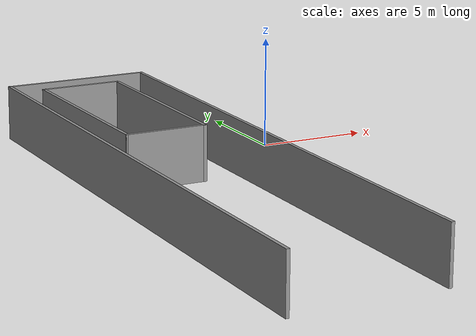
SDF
<?xml version='1.0'?>
<sdf version='1.7'>
  <model name='inaut_test'>
    <pose>-5.0375 -6.764 0 0 -0 0</pose>
    <link name='Wall_17'>
      <collision name='Wall_17_Collision'>
        <geometry>
          <box>
            <size>6.8 0.15 2.5</size>
          </box>
        </geometry>
        <pose>0 0 1.25 0 -0 0</pose>
      </collision>
      <visual name='Wall_17_Visual'>
        <pose>0 0 1.25 0 -0 0</pose>
        <geometry>
          <box>
            <size>6.8 0.15 2.5</size>
          </box>
        </geometry>
        <material>
          <script>
            <uri>file://media/materials/scripts/gazebo.material</uri>
            <name>Gazebo/Grey</name>
          </script>
          <ambient>1 1 1 1</ambient>
        </material>
        <meta>
          <layer>0</layer>
        </meta>
      </visual>
      <pose>-1.6375 13.064 0 0 -0 0</pose>
    </link>
    <link name='Wall_21'>
      <collision name='Wall_21_Collision'>
        <geometry>
          <box>
            <size>26.278 0.15 2.5</size>
          </box>
        </geometry>
        <pose>0 0 1.25 0 -0 0</pose>
      </collision>
      <visual name='Wall_21_Visual'>
        <pose>0 0 1.25 0 -0 0</pose>
        <geometry>
          <box>
            <size>26.278 0.15 2.5</size>
          </box>
        </geometry>
        <material>
          <script>
            <uri>file://media/materials/scripts/gazebo.material</uri>
            <name>Gazebo/Grey</name>
          </script>
          <ambient>1 1 1 1</ambient>
        </material>
        <meta>
          <layer>0</layer>
        </meta>
      </visual>
      <pose>-4.9625 0 0 0 -0 1.5708</pose>
    </link>
    <link name='Wall_23'>
      <collision name='Wall_23_Collision'>
        <geometry>
          <box>
            <size>26.27 0.15 2.5</size>
          </box>
        </geometry>
        <pose>0 0 1.25 0 -0 0</pose>
      </collision>
      <visual name='Wall_23_Visual'>
        <pose>0 0 1.25 0 -0 0</pose>
        <geometry>
          <box>
            <size>26.27 0.15 2.5</size>
          </box>
        </geometry>
        <material>
          <script>
            <uri>file://media/materials/scripts/gazebo.material</uri>
            <name>Gazebo/Grey</name>
          </script>
          <ambient>1 1 1 1</ambient>
        </material>
        <meta>
          <layer>0</layer>
        </meta>
      </visual>
      <pose>1.6875 0.004 0 0 -0 -1.5708</pose>
    </link>
    <link name='Wall_40'>
      <collision name='Wall_40_Collision'>
        <geometry>
          <box>
            <size>3.75 0.15 2.5</size>
          </box>
        </geometry>
        <pose>0 0 1.25 0 -0 0</pose>
      </collision>
      <visual name='Wall_40_Visual'>
        <pose>0 0 1.25 0 -0 0</pose>
        <geometry>
          <box>
            <size>3.75 0.15 2.5</size>
          </box>
        </geometry>
        <material>
          <script>
            <uri>file://media/materials/scripts/gazebo.material</uri>
            <name>Gazebo/Grey</name>
          </script>
          <ambient>1 1 1 1</ambient>
        </material>
        <meta>
          <layer>0</layer>
        </meta>
      </visual>
      <pose>-1.93886 11.8439 0 0 -0 3.14159</pose>
    </link>
    <link name='Wall_41'>
      <collision name='Wall_41_Collision'>
        <geometry>
          <box>
            <size>9.15816 0.15 2.5</size>
          </box>
        </geometry>
        <pose>0 0 1.25 0 -0 0</pose>
      </collision>
      <visual name='Wall_41_Visual'>
        <pose>0 0 1.25 0 -0 0</pose>
        <geometry>
          <box>
            <size>9.15816 0.15 2.5</size>
          </box>
        </geometry>
        <material>
          <script>
            <uri>file://media/materials/scripts/gazebo.material</uri>
            <name>Gazebo/Grey</name>
          </script>
          <ambient>1 1 1 1</ambient>
        </material>
        <meta>
          <layer>0</layer>
        </meta>
      </visual>
      <pose>-3.70847 7.34005 0 0 -0 -1.56007</pose>
    </link>
    <link name='Wall_42'>
      <collision name='Wall_42_Collision'>
        <geometry>
          <box>
            <size>3.75 0.15 2.5</size>
          </box>
        </geometry>
        <pose>0 0 1.25 0 -0 0</pose>
      </collision>
      <visual name='Wall_42_Visual'>
        <pose>0 0 1.25 0 -0 0</pose>
        <geometry>
          <box>
            <size>3.75 0.15 2.5</size>
          </box>
        </geometry>
        <material>
          <script>
            <uri>file://media/materials/scripts/gazebo.material</uri>
            <name>Gazebo/Grey</name>
          </script>
          <ambient>1 1 1 1</ambient>
        </material>
        <meta>
          <layer>0</layer>
        </meta>
      </visual>
      <pose>-1.86017 2.83622 0 0 -0 0</pose>
    </link>
    <link name='Wall_43'>
      <collision name='Wall_43_Collision'>
        <geometry>
          <box>
            <size>9.08229 0.15 2.5</size>
          </box>
        </geometry>
        <pose>0 0 1.25 0 -0 0</pose>
      </collision>
      <visual name='Wall_43_Visual'>
        <pose>0 0 1.25 0 -0 0</pose>
        <geometry>
          <box>
            <size>9.08229 0.15 2.5</size>
          </box>
        </geometry>
        <material>
          <script>
            <uri>file://media/materials/scripts/gazebo.material</uri>
            <name>Gazebo/Grey</name>
          </script>
          <ambient>1 1 1 1</ambient>
        </material>
        <meta>
          <layer>0</layer>
        </meta>
      </visual>
      <pose>-0.071917 7.2906 0 0 -0 1.57343</pose>
    </link>
    <static>1</static>
  </model>
</sdf>
